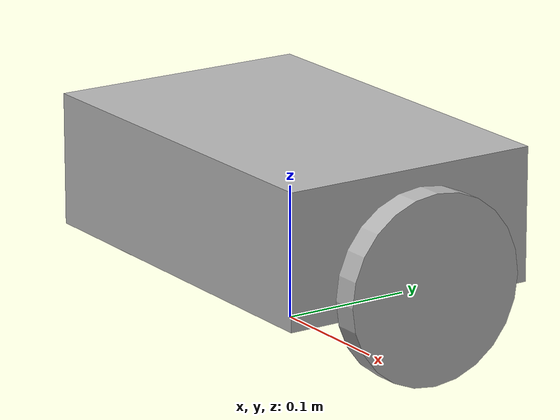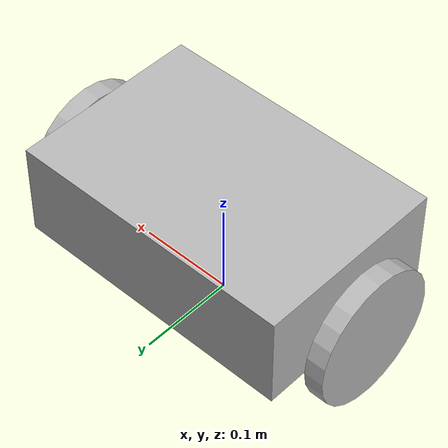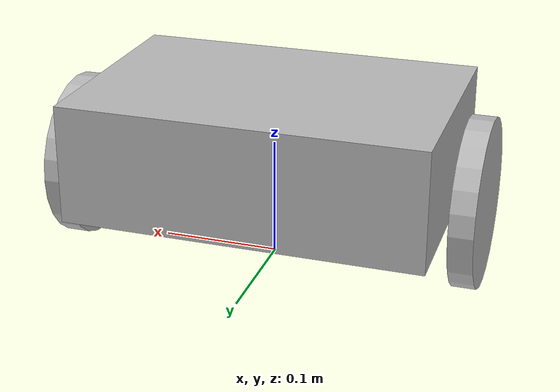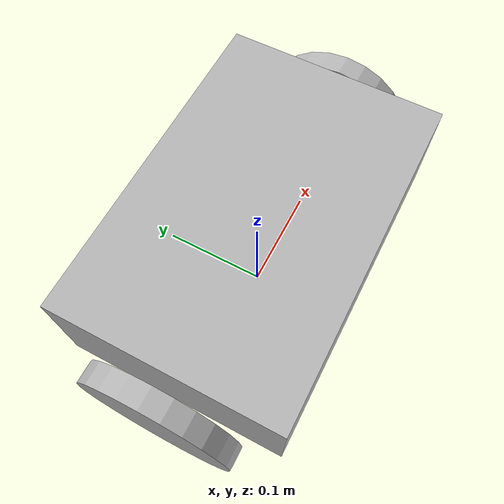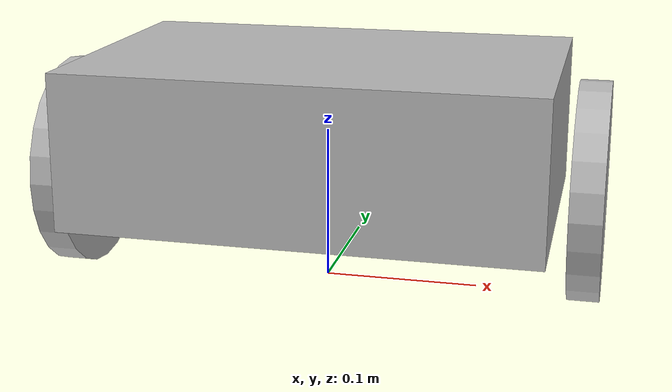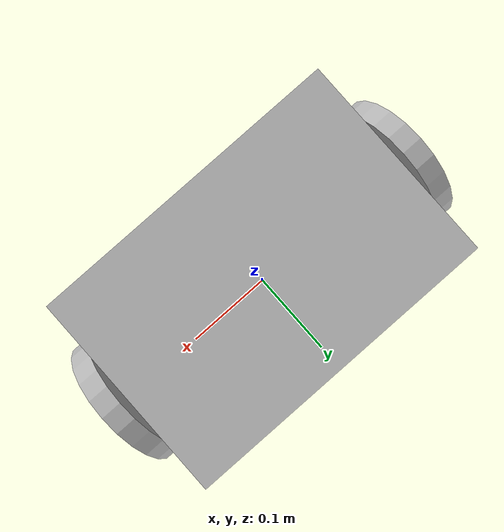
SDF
<?xml version='1.0'?>
   <sdf version='1.4'>
     <model name="carriage">

      <link name='chassis'>
        <pose>0 0 .1 0 0 0</pose>
        <inertial>
          <mass>50</mass>
        </inertial>
        <collision name='collision'>
          <geometry>
            <box>
              <size>.3 .2 .1</size>
            </box>
          </geometry>
        </collision>

        <visual name='visual'>
          <geometry>
            <box>
              <size>.3 .2 .1</size>
            </box>
          </geometry>
        </visual>
      </link>

        <link name="left_wheel">
          <pose>-0.17 0 0.07 0 1.5707 0</pose>
          <inertial>
            <mass>10</mass>
          </inertial>
          <collision name="collision">
            <geometry>
              <cylinder>
                <radius>.07</radius>
                <length>.02</length>
              </cylinder>
            </geometry>
              <surface>
                <friction>
                  <ode>
                    <mu>100000</mu>
                    <mu2>100000</mu2>
                    <slip1>0</slip1>
                    <slip2>0</slip2>
                  </ode>
                </friction>
              </surface>
              <max_contacts>10</max_contacts>
          </collision>
          <visual name="visual">
            <geometry>
              <cylinder>
                <radius>.07</radius>
                <length>.02</length>
              </cylinder>
            </geometry>
          </visual>
        </link>

        <link name="right_wheel">
          <pose>0.17 0 0.07 0 1.5707 0</pose>
          <inertial>
            <mass>10</mass>
          </inertial>
          <collision name="collision">
            <geometry>
              <cylinder>
                <radius>.07</radius>
                <length>.02</length>
              </cylinder>
            </geometry>
              <surface>
                <friction>
                  <ode>
                    <mu>100000</mu>
                    <mu2>100000</mu2>
                    <slip1>0</slip1>
                    <slip2>0</slip2>
                  </ode>
                </friction>
              </surface>
              <max_contacts>10</max_contacts>
          </collision>
          <visual name="visual">
            <geometry>
              <cylinder>
                <radius>.07</radius>
                <length>.02</length>
              </cylinder>
            </geometry>
          </visual>
        </link>

        <joint name='left_wheel_joint' type='revolute'>
          <child>left_wheel</child>
          <parent>chassis</parent>
          <axis>
            <xyz>-1 0 0</xyz>
          </axis>
        </joint>

        <joint name='right_wheel_joint' type='revolute'>
          <child>right_wheel</child>
          <parent>chassis</parent>
          <axis>
            <xyz>-1 0 0</xyz>
          </axis>
        </joint>

    </model>
   </sdf>
